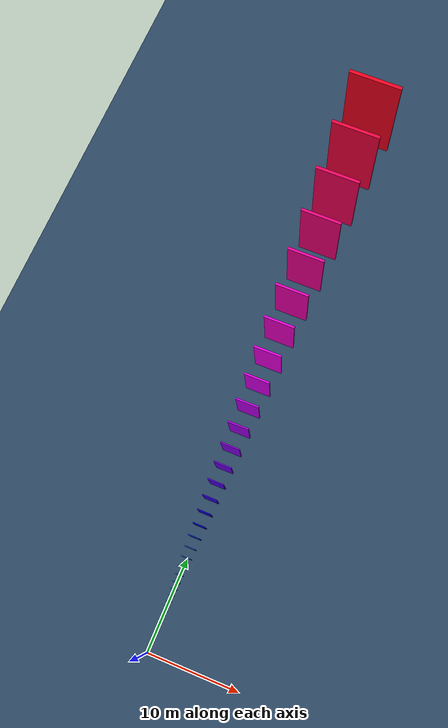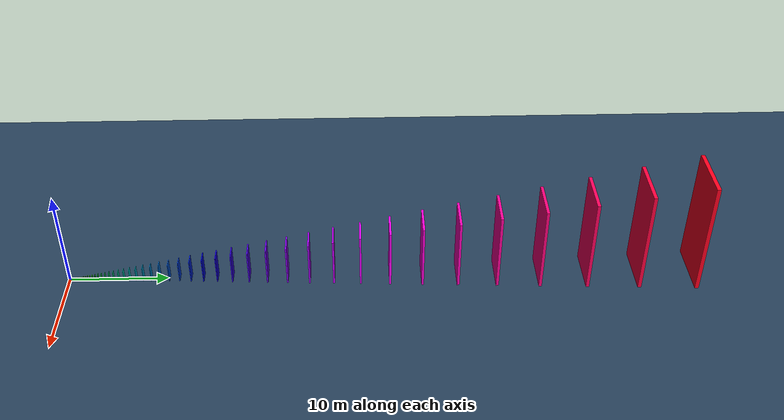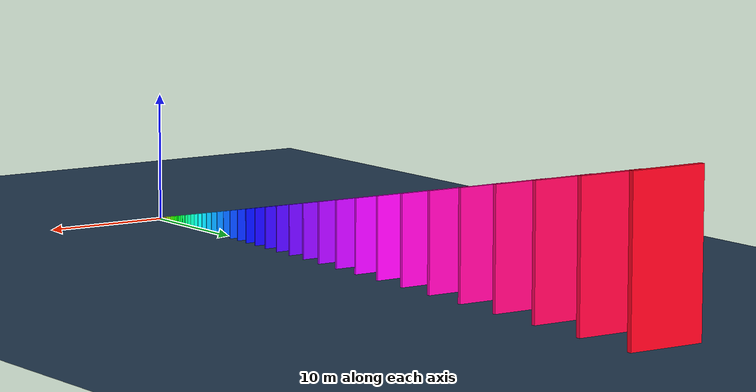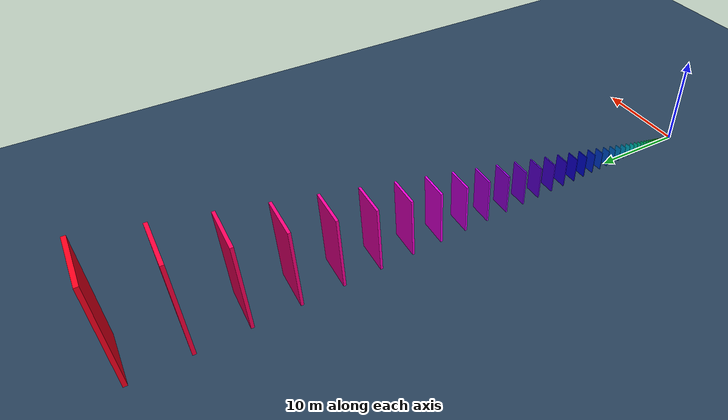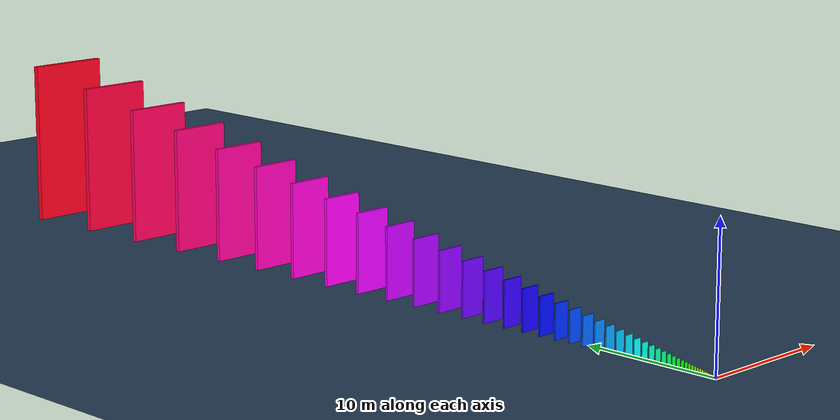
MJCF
<mujoco>
  <visual>
    <headlight diffuse="0.6 0.6 0.6" ambient="0.1 0.1 0.1" specular="0 0 0"/>
    <rgba haze="0.15 0.25 0.35 1"/>
    <global azimuth="120" elevation="-20"/>
  </visual>
  <asset>
    <texture type="skybox" builtin="gradient" rgb1="0.3 0.5 0.7" rgb2="0 0 0" width="512" height="3072"/>
    <texture type="2d" name="groundplane" builtin="checker" mark="edge" rgb1="0.2 0.3 0.4" rgb2="0.1 0.2 0.3" markrgb="0.8 0.8 0.8" width="300" height="300"/>
    <material name="groundplane" texture="groundplane" texuniform="true" texrepeat="5 5" reflectance="0.2"/>
  </asset>
  <worldbody>
    <light pos="0 0 1.5" dir="0 0 -1" directional="true"/>
    <geom name="floor" size="0 0 0.05" type="plane" material="groundplane"/>
    <body pos="0 0.03 0.06" euler="-5 0 0">
      <geom type="box" size="0.03 0.002  0.06" rgba="1.0 0.0 0.0 1"/>
      <freejoint/>
    </body>
    <body pos="0 0.09295623425962674 0.06591246851925349" euler="0 0 0">
      <geom type="box" size="0.032956234259626745 0.0021970822839751164  0.06591246851925349" rgba="1.0 0.12 0.0 1"/>
      <freejoint/>
    </body>
    <body pos="0 0.16211624773843333 0.07240755843835972" euler="0 0 0">
      <geom type="box" size="0.03620377921917986 0.0024135852812786573  0.07240755843835972" rgba="1.0 0.24 0.0 1"/>
      <freejoint/>
    </body>
    <body pos="0 0.23809136792531646 0.07954268193540655" euler="0 0 0">
      <geom type="box" size="0.039771340967703274 0.0026514227311802184  0.07954268193540655" rgba="1.0 0.36 0.0 1"/>
      <freejoint/>
    </body>
    <body pos="0 0.32155316321805705 0.08738090865007461" euler="0 0 0">
      <geom type="box" size="0.043690454325037306 0.0029126969550024875  0.08738090865007461" rgba="1.0 0.48 0.0 1"/>
      <freejoint/>
    </body>
    <body pos="0 0.41323937913127606 0.0959915231763635" euler="0 0 0">
      <geom type="box" size="0.04799576158818175 0.0031997174392121163  0.0959915231763635" rgba="1.0 0.6000000000000001 0.0 1"/>
      <freejoint/>
    </body>
    <body pos="0 0.5139604594651016 0.10545063749128751" euler="0 0 0">
      <geom type="box" size="0.052725318745643755 0.003515021249709584  0.10545063749128751" rgba="1.0 0.72 0.0 1"/>
      <freejoint/>
    </body>
    <body pos="0 0.6246067100772428 0.115841863732995" euler="0 0 0">
      <geom type="box" size="0.0579209318664975 0.0038613954577665006  0.115841863732995" rgba="1.0 0.8400000000000001 0.0 1"/>
      <freejoint/>
    </body>
    <body pos="0 0.746156168581346 0.12725705327521145" euler="0 0 0">
      <geom type="box" size="0.06362852663760572 0.004241901775840383  0.12725705327521145" rgba="1.0 0.96 0.0 1"/>
      <freejoint/>
    </body>
    <body pos="0 0.8796832495344129 0.13979710863092235" euler="0 0 0">
      <geom type="box" size="0.06989855431546117 0.004659903621030744  0.13979710863092235" rgba="0.9199999999999999 1.0 0.0 1"/>
      <freejoint/>
    </body>
    <body pos="0 1.0263682415308601 0.15357287536197214" euler="0 0 0">
      <geom type="box" size="0.07678643768098607 0.0051190958453990725  0.15357287536197214" rgba="0.7999999999999998 1.0 0.0 1"/>
      <freejoint/>
    </body>
    <body pos="0 1.187507740151073 0.16870612187845382" euler="0 0 0">
      <geom type="box" size="0.08435306093922691 0.00562353739594846  0.16870612187845382" rgba="0.6799999999999999 1.0 0.0 1"/>
      <freejoint/>
    </body>
    <body pos="0 1.3645261089846243 0.18533061578864884" euler="0 0 0">
      <geom type="box" size="0.09266530789432442 0.006177687192954963  0.18533061578864884" rgba="0.56 1.0 0.0 1"/>
      <freejoint/>
    </body>
    <body pos="0 1.5589880700358085 0.2035933063137197" euler="0 0 0">
      <geom type="box" size="0.10179665315685985 0.006786443543790657  0.2035933063137197" rgba="0.43999999999999995 1.0 0.0 1"/>
      <freejoint/>
    </body>
    <body pos="0 1.7726125348021164 0.22365562321889643" euler="0 0 0">
      <geom type="box" size="0.11182781160944821 0.00745518744062988  0.22365562321889643" rgba="0.31999999999999984 1.0 0.0 1"/>
      <freejoint/>
    </body>
    <body pos="0 2.0072877982829773 0.2456949037428255" euler="0 0 0">
      <geom type="box" size="0.12284745187141274 0.00818983012476085  0.2456949037428255" rgba="0.20000000000000018 1.0 0.0 1"/>
      <freejoint/>
    </body>
    <body pos="0 2.2650882302234736 0.2699059601381667" euler="0 0 0">
      <geom type="box" size="0.13495298006908335 0.00899686533793889  0.2699059601381667" rgba="0.08000000000000007 1.0 0.0 1"/>
      <freejoint/>
    </body>
    <body pos="0 2.548292611132272 0.29650280167943005" euler="0 0 0">
      <geom type="box" size="0.14825140083971503 0.009883426722647668  0.29650280167943005" rgba="0.0 1.0 0.040000000000000036 1"/>
      <freejoint/>
    </body>
    <body pos="0 2.859404275151703 0.32572052635943155" euler="0 0 0">
      <geom type="box" size="0.16286026317971578 0.010857350878647719  0.32572052635943155" rgba="0.0 1.0 0.16000000000000014 1"/>
      <freejoint/>
    </body>
    <body pos="0 3.2011732378292583 0.35781739899567855" euler="0 0 0">
      <geom type="box" size="0.17890869949783927 0.011927246633189286  0.35781739899567855" rgba="0.0 1.0 0.28000000000000025 1"/>
      <freejoint/>
    </body>
    <body pos="0 3.576620504384963 0.3930771341157305" euler="0 0 0">
      <geom type="box" size="0.19653856705786524 0.013102571137191018  0.3930771341157305" rgba="0.0 1.0 0.40000000000000036 1"/>
      <freejoint/>
    </body>
    <body pos="0 3.9890647733431734 0.43181140380069116" euler="0 0 0">
      <geom type="box" size="0.21590570190034558 0.01439371346002304  0.43181140380069116" rgba="0.0 1.0 0.52 1"/>
      <freejoint/>
    </body>
    <body pos="0 4.4421517715707495 0.4743625926544619" euler="0 0 0">
      <geom type="box" size="0.23718129632723095 0.015812086421815398  0.4743625926544619" rgba="0.0 1.0 0.6400000000000001 1"/>
      <freejoint/>
    </body>
    <body pos="0 4.939886480023386 0.5211068242508116" euler="0 0 0">
      <geom type="box" size="0.2605534121254058 0.01737022747502705  0.5211068242508116" rgba="0.0 1.0 0.7600000000000002 1"/>
      <freejoint/>
    </body>
    <body pos="0 5.48666853505379 0.5724572858099962" euler="0 0 0">
      <geom type="box" size="0.2862286429049981 0.019081909526999875  0.5724572858099962" rgba="0.0 1.0 0.8799999999999999 1"/>
      <freejoint/>
    </body>
    <body pos="0 6.087331118205193 0.6288678804928115" euler="0 0 0">
      <geom type="box" size="0.31443394024640575 0.02096226268309372  0.6288678804928115" rgba="0.0 1.0 1.0 1"/>
      <freejoint/>
    </body>
    <body pos="0 6.747183678249534 0.6908372395958682" euler="0 0 0">
      <geom type="box" size="0.3454186197979341 0.02302790798652894  0.6908372395958682" rgba="0.0 0.8799999999999999 1.0 1"/>
      <freejoint/>
    </body>
    <body pos="0 7.472058863104055 0.7589131301131775" euler="0 0 0">
      <geom type="box" size="0.37945656505658876 0.02529710433710592  0.7589131301131775" rgba="0.0 0.7599999999999998 1.0 1"/>
      <freejoint/>
    </body>
    <body pos="0 8.268364076472587 0.8336972966238824" euler="0 0 0">
      <geom type="box" size="0.4168486483119412 0.02778990988746275  0.8336972966238824" rgba="0.0 0.6399999999999997 1.0 1"/>
      <freejoint/>
    </body>
    <body pos="0 9.143138114937097 0.9158507803051401" euler="0 0 0">
      <geom type="box" size="0.45792539015257006 0.030528359343504674  0.9158507803051401" rgba="0.0 0.5200000000000005 1.0 1"/>
      <freejoint/>
    </body>
    <body pos="0 10.104113386132969 1.0060997620866043" euler="0 0 0">
      <geom type="box" size="0.5030498810433022 0.03353665873622015  1.0060997620866043" rgba="0.0 0.40000000000000036 1.0 1"/>
      <freejoint/>
    </body>
    <body pos="0 11.159784257974287 1.1052419815960293" euler="0 0 0">
      <geom type="box" size="0.5526209907980146 0.03684139938653431  1.1052419815960293" rgba="0.0 0.28000000000000025 1.0 1"/>
      <freejoint/>
    </body>
    <body pos="0 12.319482143089848 1.214153788635094" euler="0 0 0">
      <geom type="box" size="0.607076894317547 0.04047179295450313  1.214153788635094" rgba="0.0 0.16000000000000014 1.0 1"/>
      <freejoint/>
    </body>
    <body pos="0 13.593457982165255 1.3337978895157168" euler="0 0 0">
      <geom type="box" size="0.6668989447578584 0.044459929650523894  1.3337978895157168" rgba="0.0 0.040000000000000036 1.0 1"/>
      <freejoint/>
    </body>
    <body pos="0 14.992972855287707 1.4652318567291907" euler="0 0 0">
      <geom type="box" size="0.7326159283645953 0.04884106189097302  1.4652318567291907" rgba="0.08000000000000007 0.0 1.0 1"/>
      <freejoint/>
    </body>
    <body pos="0 16.53039752223622 1.6096174771678347" euler="0 0 0">
      <geom type="box" size="0.8048087385839173 0.05365391590559449  1.6096174771678347" rgba="0.20000000000000018 0.0 1.0 1"/>
      <freejoint/>
    </body>
    <body pos="0 18.21932177158568 1.7682310215310861" euler="0 0 0">
      <geom type="box" size="0.8841155107655431 0.058941034051036206  1.7682310215310861" rgba="0.3200000000000003 0.0 1.0 1"/>
      <freejoint/>
    </body>
    <body pos="0 20.074674545196515 1.9424745256905862" euler="0 0 0">
      <geom type="box" size="0.9712372628452931 0.06474915085635288  1.9424745256905862" rgba="0.4399999999999995 0.0 1.0 1"/>
      <freejoint/>
    </body>
    <body pos="0 22.112855899908748 2.1338881837338772" euler="0 0 0">
      <geom type="box" size="1.0669440918669386 0.07112960612446258  2.1338881837338772" rgba="0.5600000000000005 0.0 1.0 1"/>
      <freejoint/>
    </body>
    <body pos="0 24.35188197289207 2.344163962232769" euler="0 0 0">
      <geom type="box" size="1.1720819811163845 0.07813879874109231  2.344163962232769" rgba="0.6799999999999997 0.0 1.0 1"/>
      <freejoint/>
    </body>
    <body pos="0 26.811544232047087 2.575160556077266" euler="0 0 0">
      <geom type="box" size="1.287580278038633 0.08583868520257552  2.575160556077266" rgba="0.8000000000000007 0.0 1.0 1"/>
      <freejoint/>
    </body>
    <body pos="0 29.513584419122935 2.8289198180744353" euler="0 0 0">
      <geom type="box" size="1.4144599090372176 0.09429732726914784  2.8289198180744353" rgba="0.9199999999999999 0.0 1.0 1"/>
      <freejoint/>
    </body>
    <body pos="0 32.48188673192952 3.107684807538726" euler="0 0 0">
      <geom type="box" size="1.553842403769363 0.1035894935846242  3.107684807538726" rgba="1.0 0.0 0.96 1"/>
      <freejoint/>
    </body>
    <body pos="0 35.74268894440437 3.413919617410978" euler="0 0 0">
      <geom type="box" size="1.706959808705489 0.11379732058036593  3.413919617410978" rgba="1.0 0.0 0.8399999999999999 1"/>
      <freejoint/>
    </body>
    <body pos="0 39.32481433069205 3.750331155164382" euler="0 0 0">
      <geom type="box" size="1.875165577582191 0.1250110385054794  3.750331155164382" rgba="1.0 0.0 0.7199999999999998 1"/>
      <freejoint/>
    </body>
    <body pos="0 43.259926443287135 4.119893070025799" euler="0 0 0">
      <geom type="box" size="2.0599465350128994 0.13732976900085997  4.119893070025799" rgba="1.0 0.0 0.5999999999999996 1"/>
      <freejoint/>
    </body>
    <body pos="0 47.582808997306415 4.5258720380127695" euler="0 0 0">
      <geom type="box" size="2.2629360190063847 0.15086240126709233  4.5258720380127695" rgba="1.0 0.0 0.47999999999999954 1"/>
      <freejoint/>
    </body>
    <body pos="0 52.331673334876854 4.971856637128106" euler="0 0 0">
      <geom type="box" size="2.485928318564053 0.16572855457093685  4.971856637128106" rgba="1.0 0.0 0.35999999999999943 1"/>
      <freejoint/>
    </body>
    <body pos="0 57.54849618741547 5.46178906794913" euler="0 0 0">
      <geom type="box" size="2.730894533974565 0.18205963559830435  5.46178906794913" rgba="1.0 0.0 0.2400000000000002 1"/>
      <freejoint/>
    </body>
    <body pos="0 63.279390721390044 6.0" euler="0 0 0">
      <geom type="box" size="3.0 0.2  6.0" rgba="1.0 0.0 0.1200000000000001 1"/>
      <freejoint/>
    </body>
  </worldbody>
</mujoco>
